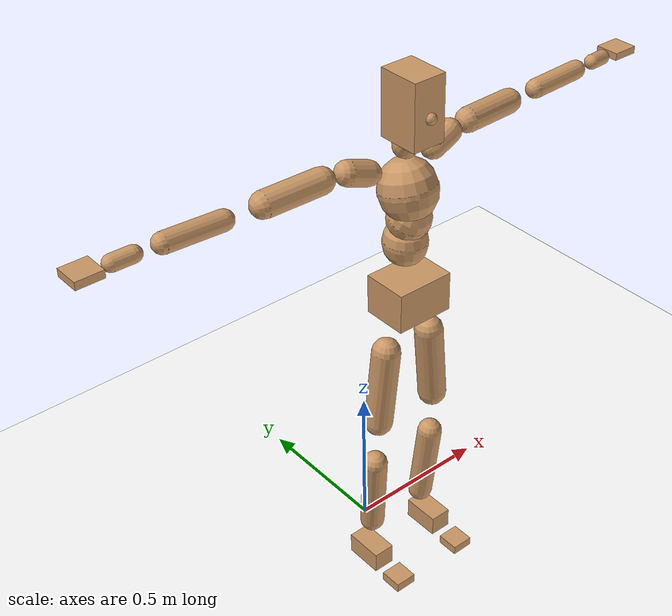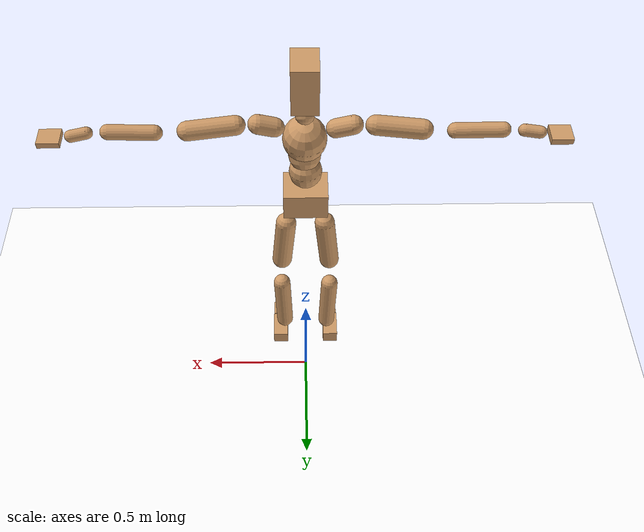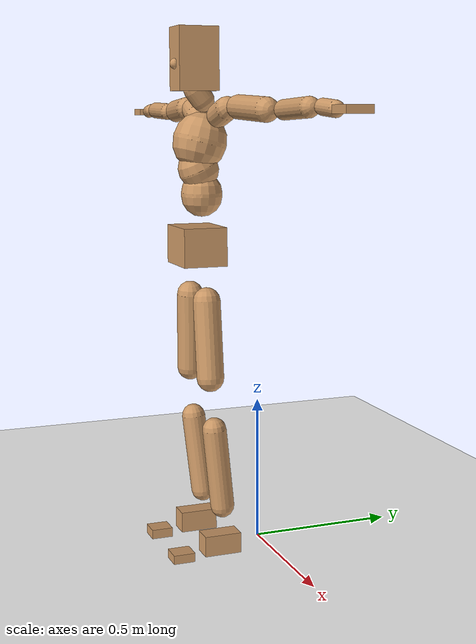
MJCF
<mujoco model="humanoid">
  <option integrator="implicitfast" />

  <visual>
    <global offwidth="1280" offheight="960" />
    <headlight active="1" ambient="0.34 0.34 0.34" diffuse="0.5 0.5 0.5" />
  </visual>

  <default>
    <joint damping="2" stiffness="2" armature="0.01" limited="true" solimplimit="0 .99 .01" />
    <geom condim="1" friction="0.7 0.005 0.0001" solimp=".99 .99 .003" solref="0.015 1" margin="0.001" rgba="0.8 0.6 .4 1" />
    <default class="smplcontact">
      <geom condim="3" friction="1. 0.005 0.0001" solref="0.015 1" solimp="0.98 0.98 0.001" priority="1" />
    </default>
    <default class="stiff_medium">
      <joint stiffness="10" />
    </default>
    <default class="stiff_medium_higher">
      <joint stiffness="50" />
    </default>
    <default class="stiff_high">
      <joint stiffness="100" />
    </default>
  </default>

  <asset>
    <texture type="skybox" builtin="gradient" rgb1="0.99 0.99 0.99" rgb2="0.608 0.828 0.892" width="100" />
    <texture builtin="flat" height="1278" mark="cross" markrgb="1 1 1" name="texgeom" random="0.01" rgb1="0.8 0.6 0.4" rgb2="0.8 0.6 0.4" type="cube" width="127" />
    <texture name="texplane" type="2d" builtin="checker" markrgb="1 1 1" rgb1="0.756 0.772 0.76" rgb2="0.6 0.6 0.6" width="100" height="100" />
    <material name="MatPlane" reflectance="0.5" texture="texplane" texrepeat="1 1" texuniform="true" />
    <material name="geom" texture="texgeom" texuniform="true" />
  </asset>

  <worldbody>
    <light name="tracking_light" pos="0 0 7" dir="0 0 -1" directional="true" cutoff="100" exponent="1" diffuse="1 1 1" specular="0.1 0.1 0.1" mode="trackcom" />
    <camera name="back" pos="0 3 2.4" xyaxes="-1 0 0 0 -1 2" mode="trackcom" />
    <camera name="side" pos="-3 0 2.4" xyaxes="0 -1 0 1 0 2" mode="trackcom" />
    <camera name="front_side" pos="-2.8 -2.8 0.8" xyaxes="0.5 -0.5 0 0.1 0.1 1" mode="trackcom" />
    <geom condim="3" name="floor" pos="0 0 0" rgba="1 1 1 1" size="100 100 .2" type="plane" material="MatPlane" />
    <body name="Pelvis" pos="-0.0018 -0.2233 1.06856" euler="90 0 0">
      <site name="Pelvis" size="0.01" />
      <freejoint name="Pelvis" />
      <geom type="box" pos="-0.0000 -0.0121 -0.0055" size="0.09621 0.06498 0.0747" quat="1.0000 0.0000 0.0000 0.0000" density="3165.830099" name="Pelvis" />
      <body name="L_Hip" pos="0.079925 -0.10511 -0.00782">
        <joint name="L_Hip_x" type="hinge" pos="0 0 0" axis="1 0 0" stiffness="6.581431195652174" range="-160.0 22.92" class="stiff_medium" damping="10.304066782213065" armature="0.007169922576005945"/>
        <joint name="L_Hip_y" type="hinge" pos="0 0 0" axis="0 1 0" stiffness="6.531437608695652" range="-70.0 70.0" class="stiff_medium" damping="5.5623419748479535" armature="0.004737034952912024"/>
        <joint name="L_Hip_z" type="hinge" pos="0 0 0" axis="0 0 1" stiffness="6.536390978260869" range="-28.65 90.0" class="stiff_medium" damping="6.847503929525791" armature="0.007173424940584978"/>
        <geom type="capsule" density="2040.816327" fromto="0.007935 -0.08625 -0.001035 0.03151 -0.34523 -0.00414" size="0.046125" name="L_Hip" />
        <body name="L_Knee" pos="0.039445 -0.43148 -0.005175">
          <joint name="L_Knee_x" type="hinge" pos="0 0 0" axis="1 0 0" range="-5.16 171.89" damping="5.1480536187695884" armature="0.006611679928728304" stiffness="1.2526343695652176"/>
          <joint name="L_Knee_y" type="hinge" pos="0 0 0" axis="0 1 0" range="-4.58 6.88" damping="4.247402599853452" armature="0.004360401145084782" stiffness="1.2929163685990335"/>
          <joint name="L_Knee_z" type="hinge" pos="0 0 0" axis="0 0 1" range="-6.88 4.58" damping="5.130664648009415" armature="0.006626882000123591" stiffness="1.2413322608695652"/>
          <geom type="capsule" density="1234.567901" fromto="-0.003105 -0.09154 -0.010005 -0.012535 -0.36616 -0.04025" size="0.040575" name="L_Knee" />
          <body name="L_Ankle" pos="-0.01564 -0.4577 -0.050255">
            <joint name="L_Ankle_x" type="hinge" pos="0 0 0" axis="1 0 0" range="-45.84 45.84" class="stiff_medium" damping="2.797837867087527" armature="0.004481889863208307" stiffness="4.85156"/>
            <joint name="L_Ankle_y" type="hinge" pos="0 0 0" axis="0 1 0" range="-74.48 22.92" class="stiff_medium" damping="1.3866211342181187" armature="0.004403436259815496" stiffness="4.85156"/>
            <joint name="L_Ankle_z" type="hinge" pos="0 0 0" axis="0 0 1" range="-4.58 4.58" class="stiff_medium" damping="2.6064979839580933" armature="0.003889832308449702" stiffness="4.85156"/>
            <geom type="box" pos="0.026795 -0.027485 0.02783" size="0.036225 0.0348 0.06375" quat="1.0000 0.0000 0.0000 0.0000" density="449.071558" name="L_Ankle" class="smplcontact" />
            <body name="L_Toe" pos="0.03036 -0.06417 0.137195">
              <joint name="L_Toe_x" type="hinge" pos="0 0 0" axis="1 0 0" range="-91.67 22.92" armature="0.0035920243660156914" damping="0.8349112942866945" stiffness="0.970312"/>
              <joint name="L_Toe_y" type="hinge" pos="0 0 0" axis="0 1 0" range="-4.58 4.58" armature="0.0032319149261721605" damping="0.7919552810410397" stiffness="0.970312"/>
              <joint name="L_Toe_z" type="hinge" pos="0 0 0" axis="0 0 1" range="-4.58 4.58" armature="0.0025037930216102676" damping="0.6970595977941487" stiffness="0.970312"/>
              <geom type="box" pos="-0.00345 0.006325 0.02852" size="0.03585 0.015 0.0372" quat="1.0000 0.0000 0.0000 0.0000" density="423.206892" name="L_Toe" class="smplcontact" />
            </body>
          </body>
        </body>
      </body>
      <body name="R_Hip" pos="-0.077855 -0.104075 -0.004945">
        <joint name="R_Hip_x" type="hinge" pos="0 0 0" axis="1 0 0" stiffness="6.581431195652174" range="-160.0 22.92" class="stiff_medium" damping="10.304066782213065" armature="0.007169922576005945"/>
        <joint name="R_Hip_y" type="hinge" pos="0 0 0" axis="0 1 0" stiffness="6.531437608695652" range="-70.0 70.0" class="stiff_medium" damping="5.5623419748479535" armature="0.004737034952912024"/>
        <joint name="R_Hip_z" type="hinge" pos="0 0 0" axis="0 0 1" stiffness="6.536390978260869" range="-90.0 28.65" class="stiff_medium" damping="6.847503929525791" armature="0.007173424940584978"/>
        <geom type="capsule" density="2040.816327" fromto="-0.008855 -0.087975 -0.00207 -0.03519 -0.352015 -0.008165" size="0.04545" name="R_Hip" />
        <body name="R_Knee" pos="-0.044045 -0.43999 -0.010235">
          <joint name="R_Knee_x" type="hinge" pos="0 0 0" axis="1 0 0" range="-5.16 171.89" damping="5.1480536187695884" armature="0.006611679928728304" stiffness="1.2526343695652176"/>
          <joint name="R_Knee_y" type="hinge" pos="0 0 0" axis="0 1 0" range="-6.88 4.58" damping="4.247402599853452" armature="0.004360401145084782" stiffness="1.2929163685990335"/>
          <joint name="R_Knee_z" type="hinge" pos="0 0 0" axis="0 0 1" range="-4.58 6.88" damping="5.130664648009415" armature="0.006626882000123591" stiffness="1.2413322608695652"/>
          <geom type="capsule" density="1234.567901" fromto="0.00368 -0.091655 -0.009775 0.01449 -0.366505 -0.03887" size="0.040575" name="R_Knee" />
          <body name="R_Ankle" pos="0.01817 -0.45816 -0.048645">
            <joint name="R_Ankle_x" type="hinge" pos="0 0 0" axis="1 0 0" range="-45.84 45.84" class="stiff_medium" damping="2.797837867087527" armature="0.004481889863208307" stiffness="4.85156"/>
            <joint name="R_Ankle_y" type="hinge" pos="0 0 0" axis="0 1 0" range="-22.92 74.48" class="stiff_medium" damping="1.3866211342181187" armature="0.004403436259815496" stiffness="4.85156"/>
            <joint name="R_Ankle_z" type="hinge" pos="0 0 0" axis="0 0 1" range="-4.58 4.58" class="stiff_medium" damping="2.6064979839580933" armature="0.003889832308449702" stiffness="4.85156"/>
            <geom type="box" pos="-0.02438 -0.02001 0.02944" size="0.036225 0.03585 0.064875" quat="1.0000 0.0000 0.0000 0.0000" density="434.700981" name="R_Ankle" class="smplcontact" />
            <body name="R_Toe" pos="-0.02921 -0.055315 0.141795">
              <joint name="R_Toe_x" type="hinge" pos="0 0 0" axis="1 0 0" range="-91.67 22.92" armature="0.0035920243660156914" damping="0.8349112942866945" stiffness="0.970312"/>
              <joint name="R_Toe_y" type="hinge" pos="0 0 0" axis="0 1 0" range="-4.58 4.58" armature="0.0032319149261721605" damping="0.7919552810410397" stiffness="0.970312"/>
              <joint name="R_Toe_z" type="hinge" pos="0 0 0" axis="0 0 1" range="-4.58 4.58" armature="0.0025037930216102676" damping="0.6970595977941487" stiffness="0.970312"/>
              <geom type="box" pos="0.00483 0.005175 0.026105" size="0.035925 0.0162 0.036975" quat="1.0000 0.0000 0.0000 0.0000" density="407.384095" name="R_Toe" class="smplcontact" />
            </body>
          </body>
        </body>
      </body>
      <body name="Torso" pos="-0.00225 0.0981 -0.02403">
        <joint name="Torso_x" type="hinge" pos="0 0 0" axis="1 0 0" range="-25.78 57.3" class="stiff_medium" damping="9.326486252600896" armature="0.006052591254779158" stiffness="6.38722543478261"/>
        <joint name="Torso_y" type="hinge" pos="0 0 0" axis="0 1 0" range="-57.3 57.3" class="stiff_high" damping="14.353115877326106" armature="0.008068792043962502" stiffness="63.82985652173914"/>
        <joint name="Torso_z" type="hinge" pos="0 0 0" axis="0 0 1" range="-34.38 34.38" class="stiff_high" damping="13.00659560433209" armature="0.006731984835945514" stiffness="62.823793181818175"/>
        <geom type="capsule" density="2040.816327" fromto="0.00225 0.05472 0.00045 0.0027 0.06687 0.00054" size="0.06921" name="Torso" />
        <body name="Spine" pos="0.00495 0.12168 0.00099">
          <joint name="Spine_x" type="hinge" pos="0 0 0" axis="1 0 0" stiffness="6.479052826086956" range="-25.78 57.3" class="stiff_medium" damping="9.646616011991796" armature="0.006383457100953971"/>
          <joint name="Spine_y" type="hinge" pos="0 0 0" axis="0 1 0" stiffness="6.42834152173913" range="-57.3 57.3" class="stiff_high" damping="5.766808908201739" armature="0.008083365299016746"/>
          <joint name="Spine_z" type="hinge" pos="0 0 0" axis="0 0 1" stiffness="13.071121304347827" range="-34.38 34.38" class="stiff_high" damping="8.299986736559234" armature="0.00731997259699353"/>
          <geom type="capsule" density="2040.816327" fromto="0.00063 0.02142 0.01026 0.00072 0.02619 0.0126" size="0.06795" name="Spine" />
          <body name="Chest" pos="0.00135 0.04761 0.02286">
            <joint name="Chest_x" type="hinge" pos="0 0 0" axis="1 0 0" stiffness="6.737964347826088" range="-25.78 57.3" class="stiff_medium" damping="9.988835563820343" armature="0.006581403242903686"/>
            <joint name="Chest_y" type="hinge" pos="0 0 0" axis="0 1 0" stiffness="6.840204565217391" range="-57.3 57.3" class="stiff_high" damping="5.945289151362946" armature="0.008074151592503987"/>
            <joint name="Chest_z" type="hinge" pos="0 0 0" axis="0 0 1" stiffness="13.376938695652171" range="-34.38 34.38" class="stiff_high" damping="8.538655935563137" armature="0.007569893942594639"/>
            <geom type="capsule" density="2040.816327" fromto="-0.00081 0.06138 -0.01557 -0.0009 0.07497 -0.01908" size="0.09018" name="Chest" />
            <body name="Neck" pos="-0.00252 0.19251 -0.03861">
              <joint name="Neck_x" type="hinge" pos="0 0 0" axis="1 0 0" range="-28.65 57.3" class="stiff_medium_higher" damping="6.66289322182167" armature="0.006433696042847401" stiffness="34.501277173913046"/>
              <joint name="Neck_y" type="hinge" pos="0 0 0" axis="0 1 0" range="-40.11 40.11" class="stiff_medium_higher" damping="6.499150136946026" armature="0.0061180439039292865" stiffness="34.51998152173913"/>
              <joint name="Neck_z" type="hinge" pos="0 0 0" axis="0 0 1" range="-40.11 40.11" class="stiff_medium_higher" damping="6.672772114139862" armature="0.006440946671864935" stiffness="34.56470760869565"/>
              <geom type="capsule" density="1000" fromto="0.0009 0.0117 0.00927 0.00369 0.0468 0.03699" size="0.03924" name="Neck" />
              <body name="Head" pos="0.00494 0.06175 0.048735">
                <joint name="Head_x" type="hinge" pos="0 0 0" axis="1 0 0" range="-28.65 57.3" class="stiff_medium_higher" damping="1.318594684209303" armature="0.006276413043191941" stiffness="34.6275"/>
                <joint name="Head_y" type="hinge" pos="0 0 0" axis="0 1 0" range="-40.11 40.11" class="stiff_medium_higher" damping="1.2823363817030833" armature="0.00593598511240833" stiffness="34.6275"/>
                <joint name="Head_z" type="hinge" pos="0 0 0" axis="0 0 1" range="-40.11 40.11" class="stiff_medium_higher" damping="1.3203641162255486" armature="0.006293269075937023" stiffness="34.6275"/>
                <geom type="box" pos="-0.00399 0.08322 -0.01102" size="0.05454 0.10386 0.0684" quat="1.0000 0.0000 0.0000 0.0000" density="1018.069894" name="Head" />
                <geom type="capsule" name="nose" size="0.018 0.009" pos="0 0.0665 0.0475" quat="1 0 0 0" mass="0" contype="0" conaffinity="0" />
              </body>
            </body>
            <body name="L_Thorax" pos="0.09456 0.14604 -0.04092">
              <joint name="L_Thorax_x" type="hinge" pos="0 0 0" axis="1 0 0" range="-10.89 4.58" class="stiff_medium_higher" damping="12.827008718209091" armature="0.0059496376981901114" stiffness="34.56768315217391"/>
              <joint name="L_Thorax_y" type="hinge" pos="0 0 0" axis="0 1 0" range="-28.65 17.19" class="stiff_medium_higher" damping="15.029658371730413" armature="0.008078488322777052" stiffness="34.952490760869566"/>
              <joint name="L_Thorax_z" type="hinge" pos="0 0 0" axis="0 0 1" range="-31.51 40.11" class="stiff_medium_higher" damping="15.032826045533856" armature="0.008080484477357713" stiffness="34.95858750000001"/>
              <geom type="capsule" density="1000" fromto="0.02184 0.00732 -0.00216 0.08736 0.02928 -0.00852" size="0.039075" name="L_Thorax" />
              <body name="L_Shoulder" pos="0.1092 0.0366 -0.01068">
                <joint name="L_Shoulder_x" type="hinge" pos="0 0 0" axis="1 0 0" range="-97.4 97.4" class="stiff_medium" damping="3.5306385931315747" armature="0.005042375203498043" stiffness="6.867028804347825"/>
                <joint name="L_Shoulder_y" type="hinge" pos="0 0 0" axis="0 1 0" range="-108.86 80.21" class="stiff_medium" damping="4.461807419884183" armature="0.007969704675364717" stiffness="6.938680869565217"/>
                <joint name="L_Shoulder_z" type="hinge" pos="0 0 0" axis="0 0 1" range="-97.4 85.94" class="stiff_medium" damping="4.4684546594667625" armature="0.007971976771955283" stiffness="6.957387391304348"/>
                <geom type="capsule" density="1000" fromto="0.06228 -0.00312 -0.0066 0.24924 -0.01224 -0.0264" size="0.038775" name="L_Shoulder" />
                <body name="L_Elbow" pos="0.31152 -0.01536 -0.033">
                  <joint name="L_Elbow_x" type="hinge" pos="0 0 0" axis="1 0 0" range="-17.19 4.58" damping="2.4850566089673283" armature="0.003721222613707717" stiffness="1.327629543478261"/>
                  <joint name="L_Elbow_y" type="hinge" pos="0 0 0" axis="0 1 0" range="-180.0 17.19" damping="3.5163037810816906" armature="0.007445347373083572" stiffness="1.3285496739130436"/>
                  <joint name="L_Elbow_z" type="hinge" pos="0 0 0" axis="0 0 1" range="-100.84 4.58" damping="3.516672400998101" armature="0.0074572090185293675" stiffness="1.3267145652173915"/>
                  <geom type="capsule" density="1000" fromto="0.05976 0.00216 -0.00024 0.23928 0.00864 -0.00108" size="0.030375" name="L_Elbow" />
                  <body name="L_Wrist" pos="0.29904 0.0108 -0.00144">
                    <joint name="L_Wrist_x" type="hinge" pos="0 0 0" axis="1 0 0" range="-180.0 22.92" armature="0.003584745847143639" damping="0.8990053371568779" stiffness="1.127291348814229"/>
                    <joint name="L_Wrist_y" type="hinge" pos="0 0 0" axis="0 1 0" range="-17.19 17.19" armature="0.005947846241764312" damping="1.164041031851903" stiffness="1.139060652173913"/>
                    <joint name="L_Wrist_z" type="hinge" pos="0 0 0" axis="0 0 1" range="-22.92 22.92" armature="0.0060740347135862585" damping="1.1727613192447106" stiffness="1.132170934782609"/>
                    <geom type="capsule" density="1000" fromto="0.02016 -0.00192 -0.0036 0.08064 -0.0078 -0.0144" size="0.02385" name="L_Wrist" class="smplcontact" />
                    <body name="L_Hand" pos="0.1008 -0.00984 -0.01788">
                      <joint name="L_Hand_x" type="hinge" pos="0 0 0" axis="1 0 0" range="-17.19 17.19" armature="0.002534326759083401" damping="0.7163806032510853" stiffness="1.0125000000000004"/>
                      <joint name="L_Hand_y" type="hinge" pos="0 0 0" axis="0 1 0" range="-51.57 51.57" armature="0.004323504563482334" damping="0.9356867393017672" stiffness="1.0125000000000004"/>
                      <joint name="L_Hand_z" type="hinge" pos="0 0 0" axis="0 0 1" range="-91.67 91.67" armature="0.00480043435292694" damping="0.9859452096682176" stiffness="1.0125000000000004"/>
                      <geom type="box" pos="0.05916 0.0012 -0.00696" size="0.043875 0.01185 0.04035" quat="1.0000 0.0000 0.0000 0.0000" density="400.552564" name="L_Hand" class="smplcontact" />
                    </body>
                  </body>
                </body>
              </body>
            </body>
            <body name="R_Thorax" pos="-0.09816 0.14256 -0.04632">
              <joint name="R_Thorax_x" type="hinge" pos="0 0 0" axis="1 0 0" range="-10.89 4.58" class="stiff_medium_higher" damping="12.827008718209091" armature="0.0059496376981901114" stiffness="34.56768315217391"/>
              <joint name="R_Thorax_y" type="hinge" pos="0 0 0" axis="0 1 0" range="-17.19 28.65" class="stiff_medium_higher" damping="15.029658371730413" armature="0.008078488322777052" stiffness="34.952490760869566"/>
              <joint name="R_Thorax_z" type="hinge" pos="0 0 0" axis="0 0 1" range="-40.11 31.51" class="stiff_medium_higher" damping="15.032826045533856" armature="0.008080484477357713" stiffness="34.95858750000001"/>
              <geom type="capsule" density="1000" fromto="-0.02304 0.0078 -0.00216 -0.09216 0.0312 -0.00876" size="0.038325" name="R_Thorax" />
              <body name="R_Shoulder" pos="-0.1152 0.03912 -0.01092">
                <joint name="R_Shoulder_x" type="hinge" pos="0 0 0" axis="1 0 0" range="-97.4 97.4" class="stiff_medium" damping="3.5306385931315747" armature="0.005042375203498043" stiffness="6.867028804347825"/>
                <joint name="R_Shoulder_y" type="hinge" pos="0 0 0" axis="0 1 0" range="-80.21 108.86" class="stiff_medium" damping="4.461807419884183" armature="0.007969704675364717" stiffness="6.938680869565217"/>
                <joint name="R_Shoulder_z" type="hinge" pos="0 0 0" axis="0 0 1" range="-85.94 97.4" class="stiff_medium" damping="4.4684546594667625" armature="0.007971976771955283" stiffness="6.957387391304348"/>
                <geom type="capsule" density="1000" fromto="-0.06084 -0.00324 -0.00516 -0.2436 -0.01284 -0.02052" size="0.039825" name="R_Shoulder" />
                <body name="R_Elbow" pos="-0.30444 -0.01596 -0.02568">
                  <joint name="R_Elbow_x" type="hinge" pos="0 0 0" axis="1 0 0" range="-17.19 4.58" damping="2.4850566089673283" armature="0.003721222613707717" stiffness="1.327629543478261"/>
                  <joint name="R_Elbow_y" type="hinge" pos="0 0 0" axis="0 1 0" range="-17.19 180.0" damping="3.5163037810816906" armature="0.007445347373083572" stiffness="1.3285496739130436"/>
                  <joint name="R_Elbow_z" type="hinge" pos="0 0 0" axis="0 0 1" range="-4.58 100.84" damping="3.516672400998101" armature="0.0074572090185293675" stiffness="1.3267145652173915"/>
                  <geom type="capsule" density="1000" fromto="-0.06132 0.00192 -0.00132 -0.24504 0.00744 -0.00528" size="0.0306" name="R_Elbow" />
                  <body name="R_Wrist" pos="-0.30636 0.00936 -0.00672">
                    <joint name="R_Wrist_x" type="hinge" pos="0 0 0" axis="1 0 0" range="-180.0 22.92" armature="0.003584745847143639" damping="0.8990053371568779" stiffness="1.127291348814229"/>
                    <joint name="R_Wrist_y" type="hinge" pos="0 0 0" axis="0 1 0" range="-17.19 17.19" armature="0.005947846241764312" damping="1.164041031851903" stiffness="1.139060652173913"/>
                    <joint name="R_Wrist_z" type="hinge" pos="0 0 0" axis="0 0 1" range="-22.92 22.92" armature="0.0060740347135862585" damping="1.1727613192447106" stiffness="1.132170934782609"/>
                    <geom type="capsule" density="1000" fromto="-0.02028 -0.00144 -0.00252 -0.08124 -0.00588 -0.00996" size="0.02445" name="R_Wrist" class="smplcontact" />
                    <body name="R_Hand" pos="-0.10152 -0.00732 -0.01236">
                      <joint name="R_Hand_x" type="hinge" pos="0 0 0" axis="1 0 0" range="-17.19 17.19" armature="0.002534326759083401" damping="0.7163806032510853" stiffness="1.0125000000000004"/>
                      <joint name="R_Hand_y" type="hinge" pos="0 0 0" axis="0 1 0" range="-51.57 51.57" armature="0.004323504563482334" damping="0.9356867393017672" stiffness="1.0125000000000004"/>
                      <joint name="R_Hand_z" type="hinge" pos="0 0 0" axis="0 0 1" range="-91.67 91.67" armature="0.00480043435292694" damping="0.9859452096682176" stiffness="1.0125000000000004"/>
                      <geom type="box" pos="-0.05544 -0.00108 -0.00948" size="0.042675 0.0123 0.04095" quat="1.0000 0.0000 0.0000 0.0000" density="403.679611" name="R_Hand" class="smplcontact" />
                    </body>
                  </body>
                </body>
              </body>
            </body>
          </body>
        </body>
      </body>
    </body>
  </worldbody>
  <actuator>
    <general name="L_Hip_x" joint="L_Hip_x" biastype="affine" gainprm="189.10430472988568" biasprm="-141.71450957999525 -118.46576152173914 -1.373875570961742" ctrllimited="true" ctrlrange="-1 1" forcerange="-236.93152304347828 236.93152304347828" />
    <general name="L_Hip_y" joint="L_Hip_y" biastype="affine" gainprm="143.63381486200842" biasprm="0.0 -117.56587695652173 -1.1124683949695906" ctrllimited="true" ctrlrange="-1 1" forcerange="-235.13175391304347 235.13175391304347" />
    <general name="L_Hip_z" joint="L_Hip_z" biastype="affine" gainprm="121.82197651298478" biasprm="62.990124391669745 -117.65503760869564 -1.3695007859051582" ctrllimited="true" ctrlrange="-1 1" forcerange="-235.31007521739127 235.31007521739127" />
    <general name="L_Knee_x" joint="L_Knee_x" biastype="affine" gainprm="174.18475262457576" biasprm="164.03176393728052 -112.73709326086959 -1.2870134046923971" ctrllimited="true" ctrlrange="-1 1" forcerange="-225.47418652173917 225.47418652173917" />
    <general name="L_Knee_y" joint="L_Knee_y" biastype="affine" gainprm="11.637104459575093" biasprm="2.335544525045612 -116.36247317391302 -1.061850649963363" ctrllimited="true" ctrlrange="-1 1" forcerange="-232.72494634782603 232.72494634782603" />
    <general name="L_Knee_z" joint="L_Knee_z" biastype="affine" gainprm="11.172813292194906" biasprm="-2.242362179061805 -111.71990347826086 -1.2826661620023538" ctrllimited="true" ctrlrange="-1 1" forcerange="-223.43980695652172 223.43980695652172" />
    <general name="L_Ankle_x" joint="L_Ankle_x" biastype="affine" gainprm="34.93380508319962" biasprm="0.0 -43.66404 -0.932612622362509" ctrllimited="true" ctrlrange="-1 1" forcerange="-87.32808 87.32808" />
    <general name="L_Ankle_y" joint="L_Ankle_y" biastype="affine" gainprm="37.11335749458599" biasprm="-19.646454952986176 -43.66404 -0.9244140894787458" ctrllimited="true" ctrlrange="-1 1" forcerange="-87.32808 87.32808" />
    <general name="L_Ankle_z" joint="L_Ankle_z" biastype="affine" gainprm="3.4903321832690715" biasprm="0.0 -43.66404 -0.8688326613193644" ctrllimited="true" ctrlrange="-1 1" forcerange="-87.32808 87.32808" />
    <general name="L_Toe_x" joint="L_Toe_x" biastype="affine" gainprm="34.930756758148725" biasprm="-20.95723472486888 -34.931232 -0.33396451771467783" ctrllimited="true" ctrlrange="-1 1" forcerange="-69.862464 69.862464" />
    <general name="L_Toe_y" joint="L_Toe_y" biastype="affine" gainprm="2.7922657466152576" biasprm="0.0 -34.931232 -0.3167821124164159" ctrllimited="true" ctrlrange="-1 1" forcerange="-69.862464 69.862464" />
    <general name="L_Toe_z" joint="L_Toe_z" biastype="affine" gainprm="2.7922657466152576" biasprm="0.0 -34.931232 -0.2788238391176595" ctrllimited="true" ctrlrange="-1 1" forcerange="-69.862464 69.862464" />
    <general name="R_Hip_x" joint="R_Hip_x" biastype="affine" gainprm="189.10430472988568" biasprm="-141.71450957999525 -118.46576152173914 -1.373875570961742" ctrllimited="true" ctrlrange="-1 1" forcerange="-236.93152304347828 236.93152304347828" />
    <general name="R_Hip_y" joint="R_Hip_y" biastype="affine" gainprm="143.63381486200842" biasprm="0.0 -117.56587695652173 -1.1124683949695906" ctrllimited="true" ctrlrange="-1 1" forcerange="-235.13175391304347 235.13175391304347" />
    <general name="R_Hip_z" joint="R_Hip_z" biastype="affine" gainprm="121.82197651298478" biasprm="-62.990124391669745 -117.65503760869564 -1.3695007859051582" ctrllimited="true" ctrlrange="-1 1" forcerange="-235.31007521739127 235.31007521739127" />
    <general name="R_Knee_x" joint="R_Knee_x" biastype="affine" gainprm="174.18475262457576" biasprm="164.03176393728052 -112.73709326086959 -1.2870134046923971" ctrllimited="true" ctrlrange="-1 1" forcerange="-225.47418652173917 225.47418652173917" />
    <general name="R_Knee_y" joint="R_Knee_y" biastype="affine" gainprm="11.637104459575093" biasprm="-2.335544525045612 -116.36247317391302 -1.061850649963363" ctrllimited="true" ctrlrange="-1 1" forcerange="-232.72494634782603 232.72494634782603" />
    <general name="R_Knee_z" joint="R_Knee_z" biastype="affine" gainprm="11.172813292194906" biasprm="2.242362179061805 -111.71990347826086 -1.2826661620023538" ctrllimited="true" ctrlrange="-1 1" forcerange="-223.43980695652172 223.43980695652172" />
    <general name="R_Ankle_x" joint="R_Ankle_x" biastype="affine" gainprm="34.93380508319962" biasprm="0.0 -43.66404 -0.932612622362509" ctrllimited="true" ctrlrange="-1 1" forcerange="-87.32808 87.32808" />
    <general name="R_Ankle_y" joint="R_Ankle_y" biastype="affine" gainprm="37.11335749458599" biasprm="19.646454952986176 -43.66404 -0.9244140894787458" ctrllimited="true" ctrlrange="-1 1" forcerange="-87.32808 87.32808" />
    <general name="R_Ankle_z" joint="R_Ankle_z" biastype="affine" gainprm="3.4903321832690715" biasprm="0.0 -43.66404 -0.8688326613193644" ctrllimited="true" ctrlrange="-1 1" forcerange="-87.32808 87.32808" />
    <general name="R_Toe_x" joint="R_Toe_x" biastype="affine" gainprm="34.930756758148725" biasprm="-20.95723472486888 -34.931232 -0.33396451771467783" ctrllimited="true" ctrlrange="-1 1" forcerange="-69.862464 69.862464" />
    <general name="R_Toe_y" joint="R_Toe_y" biastype="affine" gainprm="2.7922657466152576" biasprm="0.0 -34.931232 -0.3167821124164159" ctrllimited="true" ctrlrange="-1 1" forcerange="-69.862464 69.862464" />
    <general name="R_Toe_z" joint="R_Toe_z" biastype="affine" gainprm="2.7922657466152576" biasprm="0.0 -34.931232 -0.2788238391176595" ctrllimited="true" ctrlrange="-1 1" forcerange="-69.862464 69.862464" />
    <general name="Torso_x" joint="Torso_x" biastype="affine" gainprm="111.13922043781447" biasprm="42.1654818030803 -153.29341043478263 -2.4870630006935723" ctrllimited="true" ctrlrange="-1 1" forcerange="-229.94011565217394 229.94011565217394" />
    <general name="Torso_y" joint="Torso_y" biastype="affine" gainprm="153.20293996288706" biasprm="0.0 -153.19165565217392 -2.870623175465221" ctrllimited="true" ctrlrange="-1 1" forcerange="-229.7874834782609 229.7874834782609" />
    <general name="Torso_z" joint="Torso_z" biastype="affine" gainprm="90.47292605268747" biasprm="0.0 -150.77710363636362 -2.601319120866418" ctrllimited="true" ctrlrange="-1 1" forcerange="-226.16565545454543 226.16565545454543" />
    <general name="Spine_x" joint="Spine_x" biastype="affine" gainprm="112.73703858101433" biasprm="42.77168339038963 -155.49726782608695 -2.5724309365311457" ctrllimited="true" ctrlrange="-1 1" forcerange="-233.24590173913043 233.24590173913043" />
    <general name="Spine_y" joint="Spine_y" biastype="affine" gainprm="154.29156101588876" biasprm="0.0 -154.2801965217391 -2.8834044541008694" ctrllimited="true" ctrlrange="-1 1" forcerange="-231.42029478260866 231.42029478260866" />
    <general name="Spine_z" joint="Spine_z" biastype="affine" gainprm="94.11900581770503" biasprm="0.0 -156.85345565217392 -2.7666622455197443" ctrllimited="true" ctrlrange="-1 1" forcerange="-235.28018347826085 235.28018347826085" />
    <general name="Chest_x" joint="Chest_x" biastype="affine" gainprm="117.24215977679293" biasprm="44.480896439149156 -161.7111443478261 -2.663689483685425" ctrllimited="true" ctrlrange="-1 1" forcerange="-242.56671652173915 242.56671652173915" />
    <general name="Chest_y" joint="Chest_y" biastype="affine" gainprm="164.17700218109678" biasprm="0.0 -164.16490956521739 -2.972644575681473" ctrllimited="true" ctrlrange="-1 1" forcerange="-246.2473643478261 246.2473643478261" />
    <general name="Chest_z" joint="Chest_z" biastype="affine" gainprm="96.32105322902811" biasprm="0.0 -160.52326434782606 -2.846218645187712" ctrllimited="true" ctrlrange="-1 1" forcerange="-240.78489652173909 240.78489652173909" />
    <general name="Neck_x" joint="Neck_x" biastype="affine" gainprm="18.632062036462333" biasprm="6.210687345487445 -24.840919565217394 -0.5330314577457336" ctrllimited="true" ctrlrange="-1 1" forcerange="-49.68183913043479 49.68183913043479" />
    <general name="Neck_y" joint="Neck_y" biastype="affine" gainprm="17.3993522530745" biasprm="0.0 -24.854386695652178 -0.5199320109556821" ctrllimited="true" ctrlrange="-1 1" forcerange="-49.708773391304355 49.708773391304355" />
    <general name="Neck_z" joint="Neck_z" biastype="affine" gainprm="17.42189586137186" biasprm="0.0 -24.886589478260866 -0.533821769131189" ctrllimited="true" ctrlrange="-1 1" forcerange="-49.77317895652173 49.77317895652173" />
    <general name="Head_x" joint="Head_x" biastype="affine" gainprm="12.466818255555891" biasprm="4.155606085185298 -16.6212 -0.5274378736837212" ctrllimited="true" ctrlrange="-1 1" forcerange="-33.2424 33.2424" />
    <general name="Head_y" joint="Head_y" biastype="affine" gainprm="11.635697038518833" biasprm="0.0 -16.6212 -0.5129345526812333" ctrllimited="true" ctrlrange="-1 1" forcerange="-33.2424 33.2424" />
    <general name="Head_z" joint="Head_z" biastype="affine" gainprm="11.635697038518833" biasprm="0.0 -16.6212 -0.5281456464902194" ctrllimited="true" ctrlrange="-1 1" forcerange="-33.2424 33.2424" />
    <general name="L_Thorax_x" joint="L_Thorax_x" biastype="affine" gainprm="11.200030359835386" biasprm="-4.568338175214048 -82.96243956521738 -1.0261606974567274" ctrllimited="true" ctrlrange="-1 1" forcerange="-165.92487913043476 165.92487913043476" />
    <general name="L_Thorax_y" joint="L_Thorax_y" biastype="affine" gainprm="33.55686279361836" biasprm="-8.38921569840459 -83.88597782608696 -1.2023726697384332" ctrllimited="true" ctrlrange="-1 1" forcerange="-167.77195565217392 167.77195565217392" />
    <general name="L_Thorax_z" joint="L_Thorax_z" biastype="affine" gainprm="52.438083042643456" biasprm="6.296670122406223 -83.90061000000001 -1.2026260836427085" ctrllimited="true" ctrlrange="-1 1" forcerange="-167.80122000000003 167.80122000000003" />
    <general name="L_Shoulder_x" joint="L_Shoulder_x" biastype="affine" gainprm="56.03332974771117" biasprm="0.0 -32.961738260869566 -0.9415036248350866" ctrllimited="true" ctrlrange="-1 1" forcerange="-65.92347652173913 65.92347652173913" />
    <general name="L_Shoulder_y" joint="L_Shoulder_y" biastype="affine" gainprm="54.95258756540631" biasprm="-8.327030378954307 -33.30566817391304 -1.1898153119691155" ctrllimited="true" ctrlrange="-1 1" forcerange="-66.61133634782608 66.61133634782608" />
    <general name="L_Shoulder_z" joint="L_Shoulder_z" biastype="affine" gainprm="53.430842487677026" biasprm="-3.3397919434317664 -33.395459478260875 -1.1915879091911366" ctrllimited="true" ctrlrange="-1 1" forcerange="-66.79091895652175 66.79091895652175" />
    <general name="L_Elbow_x" joint="L_Elbow_x" biastype="affine" gainprm="9.079986646985125" biasprm="-5.259468609025377 -47.7946635652174 -0.39760905743477254" ctrllimited="true" ctrlrange="-1 1" forcerange="-95.5893271304348 95.5893271304348" />
    <general name="L_Elbow_y" joint="L_Elbow_y" biastype="affine" gainprm="82.30241081725275" biasprm="-67.95301742054323 -47.82778826086957 -0.5626086049730705" ctrllimited="true" ctrlrange="-1 1" forcerange="-95.65557652173914 95.65557652173914" />
    <general name="L_Elbow_z" joint="L_Elbow_z" biastype="affine" gainprm="43.939021543447" biasprm="-40.12113653739526 -47.761724347826096 -0.5626675841596962" ctrllimited="true" ctrlrange="-1 1" forcerange="-95.52344869565219 95.52344869565219" />
    <general name="L_Wrist_x" joint="L_Wrist_x" biastype="affine" gainprm="11.977319923668356" biasprm="-9.27162139567231 -6.763748092885375 -0.35960213486275117" ctrllimited="true" ctrlrange="-1 1" forcerange="-13.52749618577075 13.52749618577075" />
    <general name="L_Wrist_y" joint="L_Wrist_y" biastype="affine" gainprm="2.050460202542364" biasprm="0.0 -6.834363913043479 -0.4656164127407612" ctrllimited="true" ctrlrange="-1 1" forcerange="-13.668727826086958 13.668727826086958" />
    <general name="L_Wrist_z" joint="L_Wrist_z" biastype="affine" gainprm="2.717410396969193" biasprm="0.0 -6.793025608695654 -0.46910452769788424" ctrllimited="true" ctrlrange="-1 1" forcerange="-13.586051217391308 13.586051217391308" />
    <general name="L_Hand_x" joint="L_Hand_x" biastype="affine" gainprm="1.8226342478882895" biasprm="0.0 -6.075000000000003 -0.28655224130043416" ctrllimited="true" ctrlrange="-1 1" forcerange="-12.150000000000006 12.150000000000006" />
    <general name="L_Hand_y" joint="L_Hand_y" biastype="affine" gainprm="5.467902743664867" biasprm="0.0 -6.075000000000003 -0.3742746957207069" ctrllimited="true" ctrlrange="-1 1" forcerange="-12.150000000000006 12.150000000000006" />
    <general name="L_Hand_z" joint="L_Hand_z" biastype="affine" gainprm="9.719655701216954" biasprm="0.0 -6.075000000000003 -0.39437808386728707" ctrllimited="true" ctrlrange="-1 1" forcerange="-12.150000000000006 12.150000000000006" />
    <general name="R_Thorax_x" joint="R_Thorax_x" biastype="affine" gainprm="11.200030359835386" biasprm="-4.568338175214048 -82.96243956521738 -1.0261606974567274" ctrllimited="true" ctrlrange="-1 1" forcerange="-165.92487913043476 165.92487913043476" />
    <general name="R_Thorax_y" joint="R_Thorax_y" biastype="affine" gainprm="33.55686279361836" biasprm="8.389215698404584 -83.88597782608696 -1.2023726697384332" ctrllimited="true" ctrlrange="-1 1" forcerange="-167.77195565217392 167.77195565217392" />
    <general name="R_Thorax_z" joint="R_Thorax_z" biastype="affine" gainprm="52.438083042643456" biasprm="-6.296670122406223 -83.90061000000001 -1.2026260836427085" ctrllimited="true" ctrlrange="-1 1" forcerange="-167.80122000000003 167.80122000000003" />
    <general name="R_Shoulder_x" joint="R_Shoulder_x" biastype="affine" gainprm="56.03332974771117" biasprm="0.0 -32.961738260869566 -0.9415036248350866" ctrllimited="true" ctrlrange="-1 1" forcerange="-65.92347652173913 65.92347652173913" />
    <general name="R_Shoulder_y" joint="R_Shoulder_y" biastype="affine" gainprm="54.95258756540631" biasprm="8.327030378954307 -33.30566817391304 -1.1898153119691155" ctrllimited="true" ctrlrange="-1 1" forcerange="-66.61133634782608 66.61133634782608" />
    <general name="R_Shoulder_z" joint="R_Shoulder_z" biastype="affine" gainprm="53.430842487677026" biasprm="3.3397919434317593 -33.395459478260875 -1.1915879091911366" ctrllimited="true" ctrlrange="-1 1" forcerange="-66.79091895652175 66.79091895652175" />
    <general name="R_Elbow_x" joint="R_Elbow_x" biastype="affine" gainprm="9.079986646985125" biasprm="-5.259468609025377 -47.7946635652174 -0.39760905743477254" ctrllimited="true" ctrlrange="-1 1" forcerange="-95.5893271304348 95.5893271304348" />
    <general name="R_Elbow_y" joint="R_Elbow_y" biastype="affine" gainprm="82.30241081725275" biasprm="67.95301742054323 -47.82778826086957 -0.5626086049730705" ctrllimited="true" ctrlrange="-1 1" forcerange="-95.65557652173914 95.65557652173914" />
    <general name="R_Elbow_z" joint="R_Elbow_z" biastype="affine" gainprm="43.939021543447" biasprm="40.12113653739526 -47.761724347826096 -0.5626675841596962" ctrllimited="true" ctrlrange="-1 1" forcerange="-95.52344869565219 95.52344869565219" />
    <general name="R_Wrist_x" joint="R_Wrist_x" biastype="affine" gainprm="11.977319923668356" biasprm="-9.27162139567231 -6.763748092885375 -0.35960213486275117" ctrllimited="true" ctrlrange="-1 1" forcerange="-13.52749618577075 13.52749618577075" />
    <general name="R_Wrist_y" joint="R_Wrist_y" biastype="affine" gainprm="2.050460202542364" biasprm="0.0 -6.834363913043479 -0.4656164127407612" ctrllimited="true" ctrlrange="-1 1" forcerange="-13.668727826086958 13.668727826086958" />
    <general name="R_Wrist_z" joint="R_Wrist_z" biastype="affine" gainprm="2.717410396969193" biasprm="0.0 -6.793025608695654 -0.46910452769788424" ctrllimited="true" ctrlrange="-1 1" forcerange="-13.586051217391308 13.586051217391308" />
    <general name="R_Hand_x" joint="R_Hand_x" biastype="affine" gainprm="1.8226342478882895" biasprm="0.0 -6.075000000000003 -0.28655224130043416" ctrllimited="true" ctrlrange="-1 1" forcerange="-12.150000000000006 12.150000000000006" />
    <general name="R_Hand_y" joint="R_Hand_y" biastype="affine" gainprm="5.467902743664867" biasprm="0.0 -6.075000000000003 -0.3742746957207069" ctrllimited="true" ctrlrange="-1 1" forcerange="-12.150000000000006 12.150000000000006" />
    <general name="R_Hand_z" joint="R_Hand_z" biastype="affine" gainprm="9.719655701216954" biasprm="0.0 -6.075000000000003 -0.39437808386728707" ctrllimited="true" ctrlrange="-1 1" forcerange="-12.150000000000006 12.150000000000006" />
  </actuator>
  <contact>
    <exclude body1="Torso" body2="Chest" />
    <exclude body1="Head" body2="Chest" />
    <exclude body1="R_Knee" body2="R_Toe" />
    <exclude body1="R_Knee" body2="L_Ankle" />
    <exclude body1="R_Knee" body2="L_Toe" />
    <exclude body1="L_Knee" body2="L_Toe" />
    <exclude body1="L_Knee" body2="R_Ankle" />
    <exclude body1="L_Knee" body2="R_Toe" />
    <exclude body1="L_Shoulder" body2="Chest" />
    <exclude body1="R_Shoulder" body2="Chest" />
  </contact>
  <sensor>
    <framelinvel name="sensor_Pelvis_framelinvel" objtype="xbody" objname="Pelvis" />
    <framelinvel name="sensor_L_Hip_framelinvel" objtype="xbody" objname="L_Hip" />
    <framelinvel name="sensor_L_Knee_framelinvel" objtype="xbody" objname="L_Knee" />
    <framelinvel name="sensor_L_Ankle_framelinvel" objtype="xbody" objname="L_Ankle" />
    <framelinvel name="sensor_L_Toe_framelinvel" objtype="xbody" objname="L_Toe" />
    <framelinvel name="sensor_R_Hip_framelinvel" objtype="xbody" objname="R_Hip" />
    <framelinvel name="sensor_R_Knee_framelinvel" objtype="xbody" objname="R_Knee" />
    <framelinvel name="sensor_R_Ankle_framelinvel" objtype="xbody" objname="R_Ankle" />
    <framelinvel name="sensor_R_Toe_framelinvel" objtype="xbody" objname="R_Toe" />
    <framelinvel name="sensor_Torso_framelinvel" objtype="xbody" objname="Torso" />
    <framelinvel name="sensor_Spine_framelinvel" objtype="xbody" objname="Spine" />
    <framelinvel name="sensor_Chest_framelinvel" objtype="xbody" objname="Chest" />
    <framelinvel name="sensor_Neck_framelinvel" objtype="xbody" objname="Neck" />
    <framelinvel name="sensor_Head_framelinvel" objtype="xbody" objname="Head" />
    <framelinvel name="sensor_L_Thorax_framelinvel" objtype="xbody" objname="L_Thorax" />
    <framelinvel name="sensor_L_Shoulder_framelinvel" objtype="xbody" objname="L_Shoulder" />
    <framelinvel name="sensor_L_Elbow_framelinvel" objtype="xbody" objname="L_Elbow" />
    <framelinvel name="sensor_L_Wrist_framelinvel" objtype="xbody" objname="L_Wrist" />
    <framelinvel name="sensor_L_Hand_framelinvel" objtype="xbody" objname="L_Hand" />
    <framelinvel name="sensor_R_Thorax_framelinvel" objtype="xbody" objname="R_Thorax" />
    <framelinvel name="sensor_R_Shoulder_framelinvel" objtype="xbody" objname="R_Shoulder" />
    <framelinvel name="sensor_R_Elbow_framelinvel" objtype="xbody" objname="R_Elbow" />
    <framelinvel name="sensor_R_Wrist_framelinvel" objtype="xbody" objname="R_Wrist" />
    <framelinvel name="sensor_R_Hand_framelinvel" objtype="xbody" objname="R_Hand" />
    <frameangvel name="sensor_Pelvis_frameangvel" objtype="xbody" objname="Pelvis" />
    <frameangvel name="sensor_L_Hip_frameangvel" objtype="xbody" objname="L_Hip" />
    <frameangvel name="sensor_L_Knee_frameangvel" objtype="xbody" objname="L_Knee" />
    <frameangvel name="sensor_L_Ankle_frameangvel" objtype="xbody" objname="L_Ankle" />
    <frameangvel name="sensor_L_Toe_frameangvel" objtype="xbody" objname="L_Toe" />
    <frameangvel name="sensor_R_Hip_frameangvel" objtype="xbody" objname="R_Hip" />
    <frameangvel name="sensor_R_Knee_frameangvel" objtype="xbody" objname="R_Knee" />
    <frameangvel name="sensor_R_Ankle_frameangvel" objtype="xbody" objname="R_Ankle" />
    <frameangvel name="sensor_R_Toe_frameangvel" objtype="xbody" objname="R_Toe" />
    <frameangvel name="sensor_Torso_frameangvel" objtype="xbody" objname="Torso" />
    <frameangvel name="sensor_Spine_frameangvel" objtype="xbody" objname="Spine" />
    <frameangvel name="sensor_Chest_frameangvel" objtype="xbody" objname="Chest" />
    <frameangvel name="sensor_Neck_frameangvel" objtype="xbody" objname="Neck" />
    <frameangvel name="sensor_Head_frameangvel" objtype="xbody" objname="Head" />
    <frameangvel name="sensor_L_Thorax_frameangvel" objtype="xbody" objname="L_Thorax" />
    <frameangvel name="sensor_L_Shoulder_frameangvel" objtype="xbody" objname="L_Shoulder" />
    <frameangvel name="sensor_L_Elbow_frameangvel" objtype="xbody" objname="L_Elbow" />
    <frameangvel name="sensor_L_Wrist_frameangvel" objtype="xbody" objname="L_Wrist" />
    <frameangvel name="sensor_L_Hand_frameangvel" objtype="xbody" objname="L_Hand" />
    <frameangvel name="sensor_R_Thorax_frameangvel" objtype="xbody" objname="R_Thorax" />
    <frameangvel name="sensor_R_Shoulder_frameangvel" objtype="xbody" objname="R_Shoulder" />
    <frameangvel name="sensor_R_Elbow_frameangvel" objtype="xbody" objname="R_Elbow" />
    <frameangvel name="sensor_R_Wrist_frameangvel" objtype="xbody" objname="R_Wrist" />
    <frameangvel name="sensor_R_Hand_frameangvel" objtype="xbody" objname="R_Hand" />
    <subtreelinvel name="Chest_subtreelinvel" body="Chest" />
    <gyro name="Pelvis_gyro" site="Pelvis" />
  </sensor>
</mujoco>
